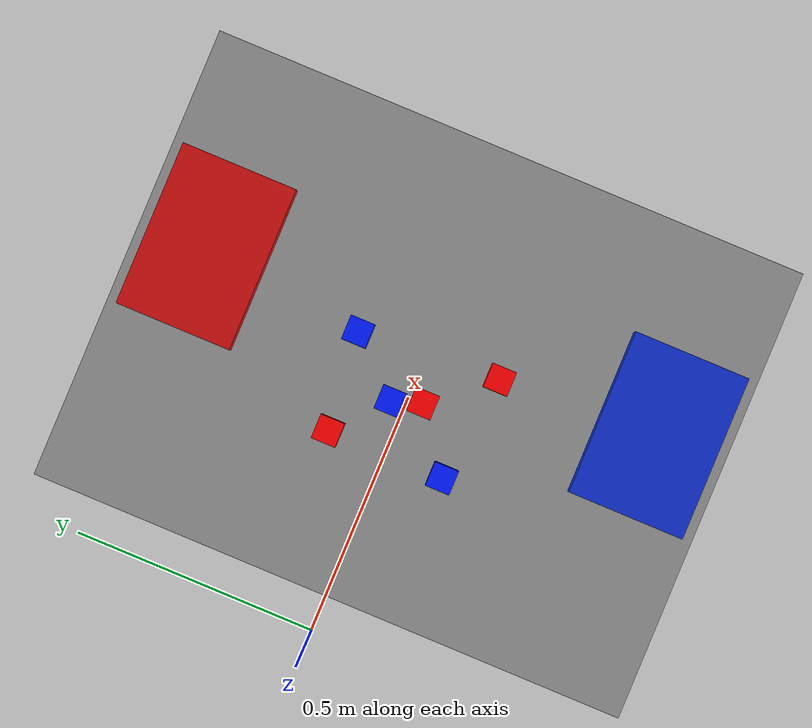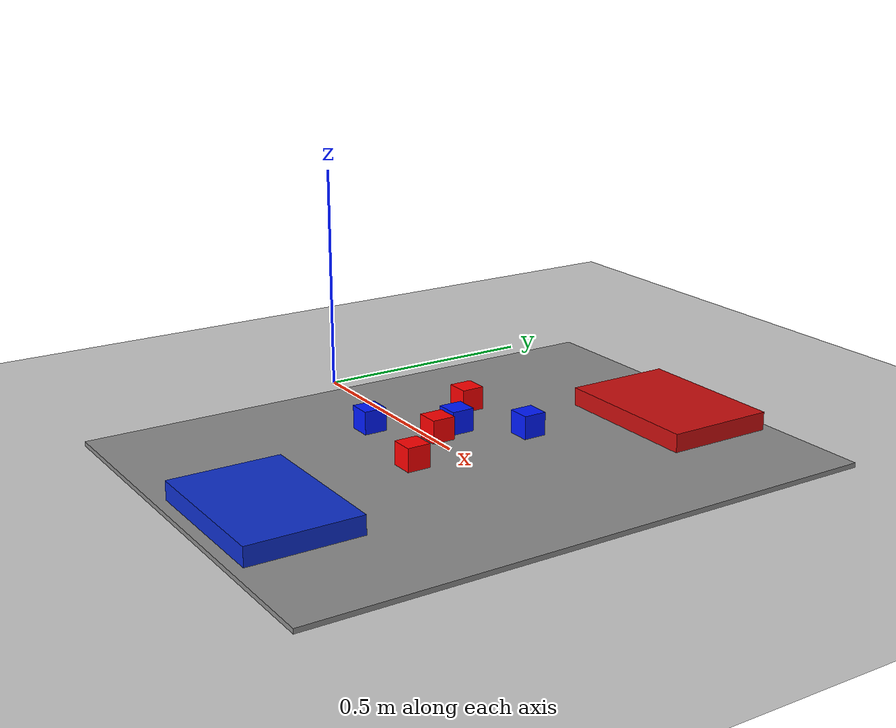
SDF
<?xml version="1.0"?>
<sdf version="1.6">
  <world name="panda_sorting_world">
    <include>
      <uri>model://sun</uri>
    </include>

    <include>
      <uri>model://ground_plane</uri>
    </include>

    <physics name="default_physics" type="ode">
      <max_step_size>0.001</max_step_size>
      <real_time_update_rate>1000</real_time_update_rate>
      <ode>
        <solver>
          <type>quick</type>
          <iters>100</iters>
          <sor>1.3</sor>
        </solver>
        <constraints>
          <cfm>0.0</cfm>
          <erp>0.2</erp>
          <contact_max_correcting_vel>0.01</contact_max_correcting_vel>
          <contact_surface_layer>0.003</contact_surface_layer>
        </constraints>
      </ode>
    </physics>

    <model name="red_container">
      <static>true</static>
      <pose>0.62 0.48 0.025 0 0 0</pose>
      <link name="base">
        <visual name="visual">
          <geometry>
            <box>
              <size>0.34 0.24 0.05</size>
            </box>
          </geometry>
          <material>
            <ambient>0.8 0.05 0.05 1</ambient>
            <diffuse>0.8 0.05 0.05 1</diffuse>
          </material>
        </visual>
        <collision name="collision">
          <geometry>
            <box>
              <size>0.34 0.24 0.05</size>
            </box>
          </geometry>
        </collision>
      </link>
    </model>

    <model name="blue_container">
      <static>true</static>
      <pose>0.62 -0.48 0.025 0 0 0</pose>
      <link name="base">
        <visual name="visual">
          <geometry>
            <box>
              <size>0.34 0.24 0.05</size>
            </box>
          </geometry>
          <material>
            <ambient>0.05 0.18 0.8 1</ambient>
            <diffuse>0.05 0.18 0.8 1</diffuse>
          </material>
        </visual>
        <collision name="collision">
          <geometry>
            <box>
              <size>0.34 0.24 0.05</size>
            </box>
          </geometry>
        </collision>
      </link>
    </model>

    <model name="sorting_table">
      <static>true</static>
      <pose>0.55 0 0.005 0 0 0</pose>
      <link name="top">
        <visual name="visual">
          <geometry>
            <box>
              <size>0.95 1.25 0.01</size>
            </box>
          </geometry>
          <material>
            <ambient>0.55 0.55 0.55 1</ambient>
            <diffuse>0.55 0.55 0.55 1</diffuse>
          </material>
        </visual>
        <collision name="collision">
          <geometry>
            <box>
              <size>0.95 1.25 0.01</size>
            </box>
          </geometry>
          <surface>
            <friction>
              <ode>
                <mu>5.0</mu>
                <mu2>5.0</mu2>
              </ode>
            </friction>
          </surface>
        </collision>
      </link>
    </model>

    <model name="red_box_1">
      <pose>0.38 0.12 0.055 0 0 0</pose>
      <link name="link">
        <inertial>
          <mass>0.15</mass>
          <inertia>
            <ixx>0.0000083</ixx>
            <iyy>0.0000083</iyy>
            <izz>0.0000083</izz>
          </inertia>
        </inertial>

        <velocity_decay>
          <linear>0.05</linear>
          <angular>0.05</angular>
        </velocity_decay>
        <visual name="visual">
          <geometry>
            <box>
              <size>0.05 0.05 0.05</size>
            </box>
          </geometry>
          <material>
            <ambient>1 0 0 1</ambient>
            <diffuse>1 0 0 1</diffuse>
          </material>
        </visual>
        <collision name="collision">
          <geometry>
            <box>
              <size>0.05 0.05 0.05</size>
            </box>
          </geometry>
            <surface>
              <friction>
                <ode>
                  <mu>100.0</mu>
                  <mu2>100.0</mu2>
                  <slip1>0.0</slip1>
                  <slip2>0.0</slip2>
                </ode>
              </friction>
              <contact>
                <ode>
                  <kp>100000.0</kp>
                  <kd>10.0</kd>
                  <max_vel>0.1</max_vel>
                  <min_depth>0.001</min_depth>
                </ode>
              </contact>
              <bounce>
                <restitution_coefficient>0.0</restitution_coefficient>
                <threshold>100000.0</threshold>
              </bounce>
            </surface>
        </collision>
      </link>
    </model>

    <model name="red_box_2">
      <pose>0.50 -0.03 0.055 0 0 0</pose>
      <link name="link">
        <inertial>
          <mass>0.15</mass>
          <inertia>
            <ixx>0.0000083</ixx>
            <iyy>0.0000083</iyy>
            <izz>0.0000083</izz>
          </inertia>
        </inertial>

        <velocity_decay>
          <linear>0.05</linear>
          <angular>0.05</angular>
        </velocity_decay>
        <visual name="visual">
          <geometry>
            <box>
              <size>0.05 0.05 0.05</size>
            </box>
          </geometry>
          <material>
            <ambient>1 0 0 1</ambient>
            <diffuse>1 0 0 1</diffuse>
          </material>
        </visual>
        <collision name="collision">
          <geometry>
            <box>
              <size>0.05 0.05 0.05</size>
            </box>
          </geometry>
            <surface>
              <friction>
                <ode>
                  <mu>100.0</mu>
                  <mu2>100.0</mu2>
                  <slip1>0.0</slip1>
                  <slip2>0.0</slip2>
                </ode>
              </friction>
              <contact>
                <ode>
                  <kp>100000.0</kp>
                  <kd>10.0</kd>
                  <max_vel>0.1</max_vel>
                  <min_depth>0.001</min_depth>
                </ode>
              </contact>
              <bounce>
                <restitution_coefficient>0.0</restitution_coefficient>
                <threshold>100000.0</threshold>
              </bounce>
            </surface>
        </collision>
      </link>
    </model>

    <model name="red_box_3">
      <pose>0.60 -0.15 0.055 0 0 0</pose>
      <link name="link">
        <inertial>
          <mass>0.15</mass>
          <inertia>
            <ixx>0.0000083</ixx>
            <iyy>0.0000083</iyy>
            <izz>0.0000083</izz>
          </inertia>
        </inertial>

        <velocity_decay>
          <linear>0.05</linear>
          <angular>0.05</angular>
        </velocity_decay>
        <visual name="visual">
          <geometry>
            <box>
              <size>0.05 0.05 0.05</size>
            </box>
          </geometry>
          <material>
            <ambient>1 0 0 1</ambient>
            <diffuse>1 0 0 1</diffuse>
          </material>
        </visual>
        <collision name="collision">
          <geometry>
            <box>
              <size>0.05 0.05 0.05</size>
            </box>
          </geometry>
            <surface>
              <friction>
                <ode>
                  <mu>100.0</mu>
                  <mu2>100.0</mu2>
                  <slip1>0.0</slip1>
                  <slip2>0.0</slip2>
                </ode>
              </friction>
              <contact>
                <ode>
                  <kp>100000.0</kp>
                  <kd>10.0</kd>
                  <max_vel>0.1</max_vel>
                  <min_depth>0.001</min_depth>
                </ode>
              </contact>
              <bounce>
                <restitution_coefficient>0.0</restitution_coefficient>
                <threshold>100000.0</threshold>
              </bounce>
            </surface>
        </collision>
      </link>
    </model>

    <model name="blue_box_1">
      <pose>0.38 -0.12 0.055 0 0 0</pose>
      <link name="link">
        <inertial>
          <mass>0.15</mass>
          <inertia>
            <ixx>0.0000083</ixx>
            <iyy>0.0000083</iyy>
            <izz>0.0000083</izz>
          </inertia>
        </inertial>

        <velocity_decay>
          <linear>0.05</linear>
          <angular>0.05</angular>
        </velocity_decay>
        <visual name="visual">
          <geometry>
            <box>
              <size>0.05 0.05 0.05</size>
            </box>
          </geometry>
          <material>
            <ambient>0 0.1 1 1</ambient>
            <diffuse>0 0.1 1 1</diffuse>
          </material>
        </visual>
        <collision name="collision">
          <geometry>
            <box>
              <size>0.05 0.05 0.05</size>
            </box>
          </geometry>
            <surface>
              <friction>
                <ode>
                  <mu>100.0</mu>
                  <mu2>100.0</mu2>
                  <slip1>0.0</slip1>
                  <slip2>0.0</slip2>
                </ode>
              </friction>
              <contact>
                <ode>
                  <kp>100000.0</kp>
                  <kd>10.0</kd>
                  <max_vel>0.1</max_vel>
                  <min_depth>0.001</min_depth>
                </ode>
              </contact>
              <bounce>
                <restitution_coefficient>0.0</restitution_coefficient>
                <threshold>100000.0</threshold>
              </bounce>
            </surface>
        </collision>
      </link>
    </model>

    <model name="blue_box_2">
      <pose>0.48 0.03 0.055 0 0 0</pose>
      <link name="link">
        <inertial>
          <mass>0.001</mass>
          <inertia>
            <ixx>0.0000083</ixx>
            <iyy>0.0000083</iyy>
            <izz>0.0000083</izz>
          </inertia>
        </inertial>

        <velocity_decay>
          <linear>0.05</linear>
          <angular>0.05</angular>
        </velocity_decay>
        <visual name="visual">
          <geometry>
            <box>
              <size>0.05 0.05 0.05</size>
            </box>
          </geometry>
          <material>
            <ambient>0 0.1 1 1</ambient>
            <diffuse>0 0.1 1 1</diffuse>
          </material>
        </visual>
        <collision name="collision">
          <geometry>
            <box>
              <size>0.05 0.05 0.05</size>
            </box>
          </geometry>
            <surface>
              <friction>
                <ode>
                  <mu>100.0</mu>
                  <mu2>100.0</mu2>
                  <slip1>0.0</slip1>
                  <slip2>0.0</slip2>
                </ode>
              </friction>
              <contact>
                <ode>
                  <kp>100000.0</kp>
                  <kd>10.0</kd>
                  <max_vel>0.1</max_vel>
                  <min_depth>0.001</min_depth>
                </ode>
              </contact>
              <bounce>
                <restitution_coefficient>0.0</restitution_coefficient>
                <threshold>100000.0</threshold>
              </bounce>
            </surface>
        </collision>
      </link>
    </model>

    <model name="blue_box_3">
      <pose>0.58 0.14 0.055 0 0 0</pose>
      <link name="link">
        <inertial>
          <mass>0.15</mass>
          <inertia>
            <ixx>0.0000083</ixx>
            <iyy>0.0000083</iyy>
            <izz>0.0000083</izz>
          </inertia>
        </inertial>

        <velocity_decay>
          <linear>0.05</linear>
          <angular>0.05</angular>
        </velocity_decay>
        <visual name="visual">
          <geometry>
            <box>
              <size>0.05 0.05 0.05</size>
            </box>
          </geometry>
          <material>
            <ambient>0 0.1 1 1</ambient>
            <diffuse>0 0.1 1 1</diffuse>
          </material>
        </visual>
        <collision name="collision">
          <geometry>
            <box>
              <size>0.05 0.05 0.05</size>
            </box>
          </geometry>
            <surface>
              <friction>
                <ode>
                  <mu>100.0</mu>
                  <mu2>100.0</mu2>
                  <slip1>0.0</slip1>
                  <slip2>0.0</slip2>
                </ode>
              </friction>
              <contact>
                <ode>
                  <kp>100000.0</kp>
                  <kd>10.0</kd>
                  <max_vel>0.1</max_vel>
                  <min_depth>0.001</min_depth>
                </ode>
              </contact>
              <bounce>
                <restitution_coefficient>0.0</restitution_coefficient>
                <threshold>100000.0</threshold>
              </bounce>
            </surface>
        </collision>
      </link>
    </model>
  </world>
</sdf>
